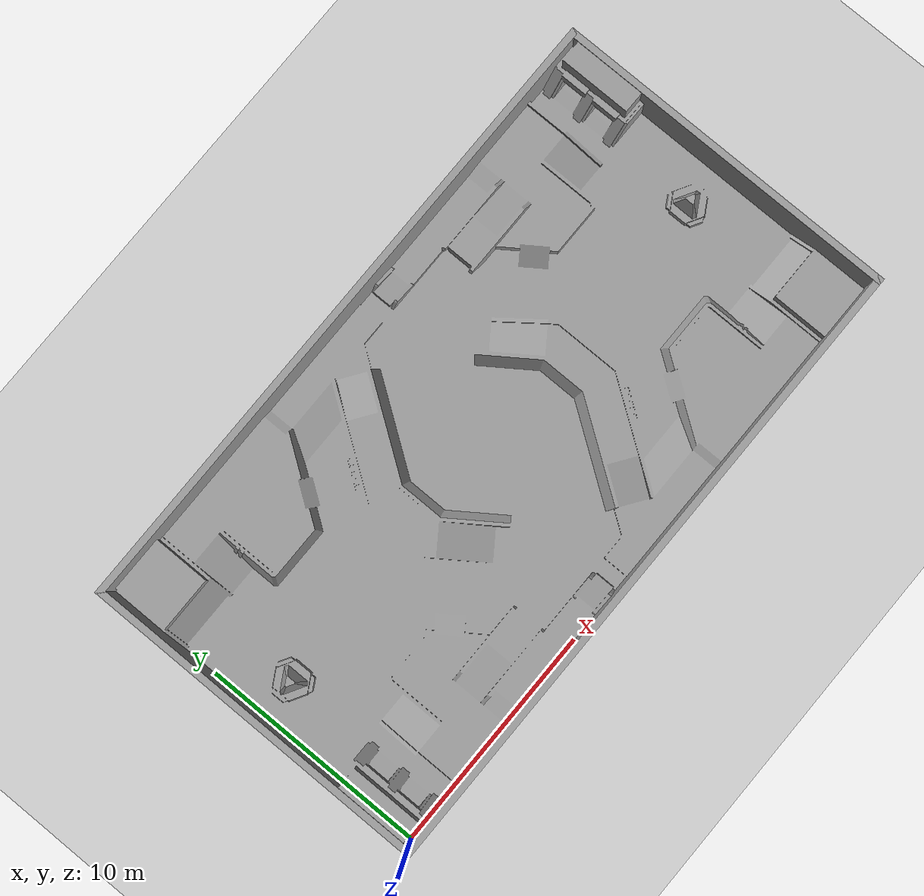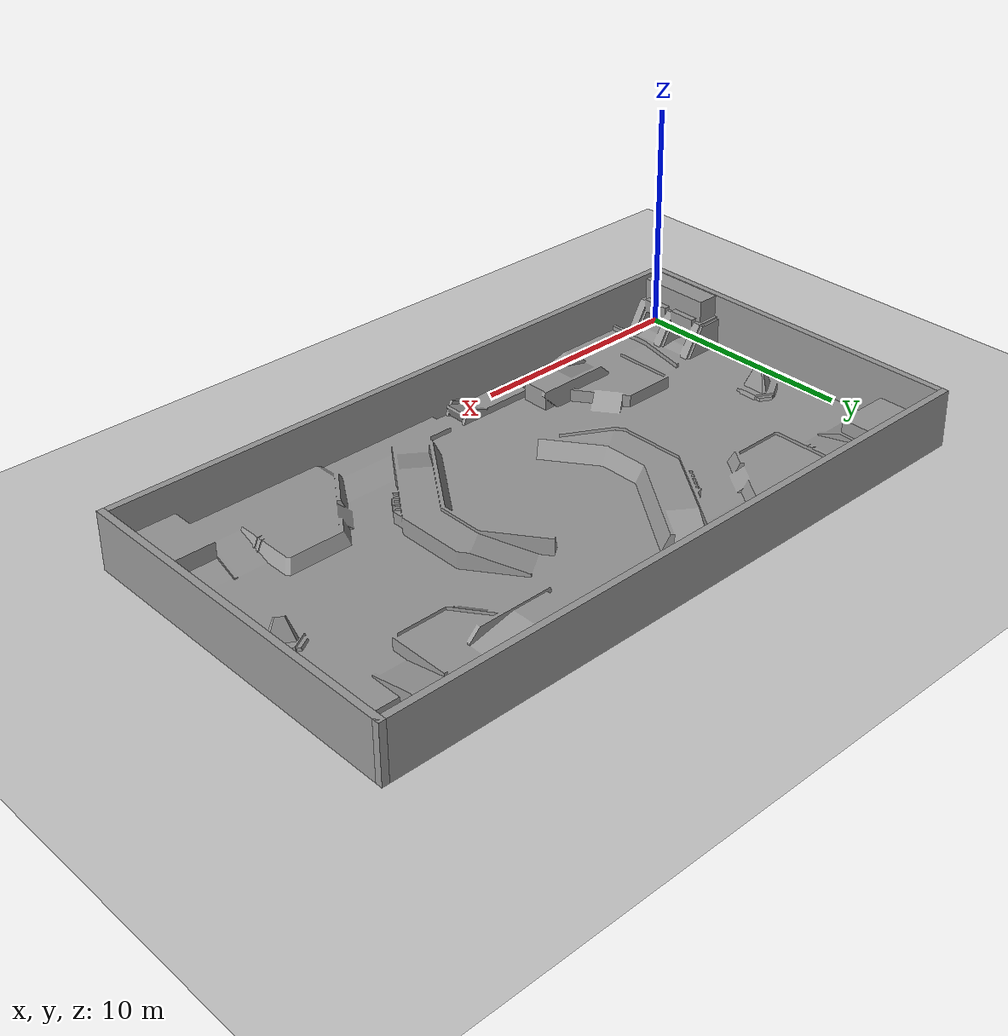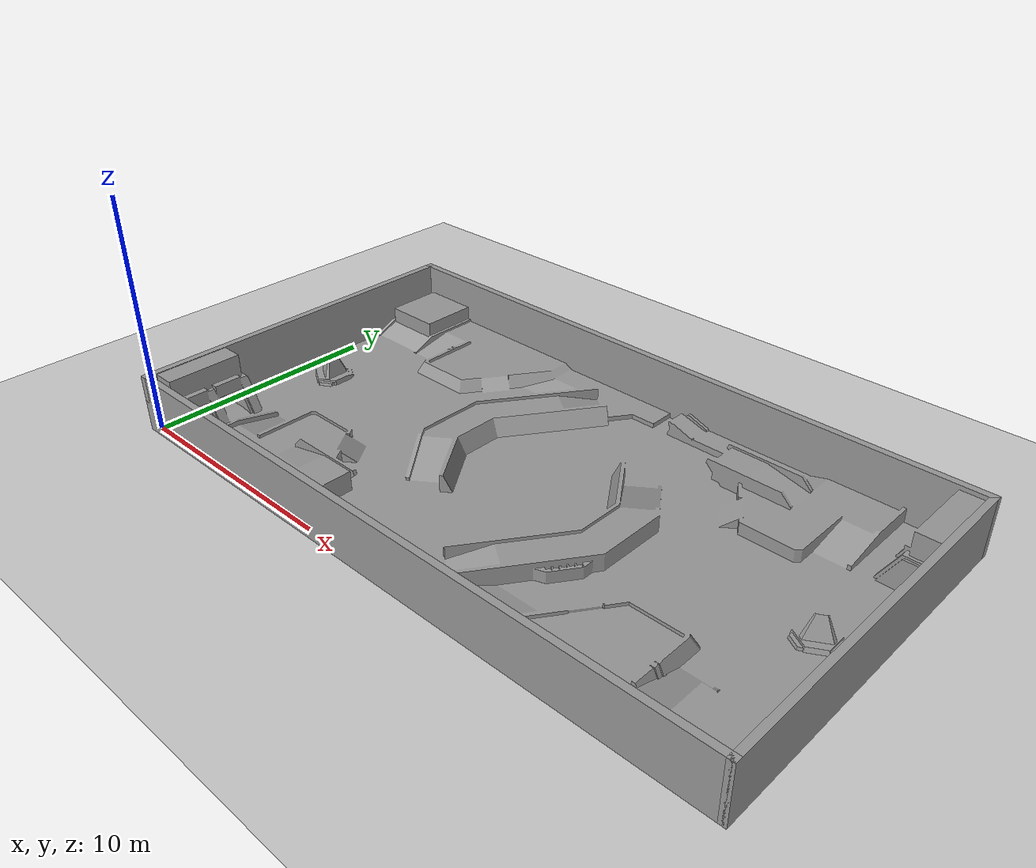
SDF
<sdf version="1.7">
 <world name="default">
  <light name="sun" type="directional">
   <pose>0 0 10 0 -0 0</pose>
   <diffuse>0.8 0.8 0.8 1</diffuse>
   <specular>0.2 0.2 0.2 1</specular>
   <attenuation>
    <range>1000</range>
    <constant>0.9</constant>
    <linear>0.01</linear>
    <quadratic>0.001</quadratic>
   </attenuation>
   <direction>-0.5 0.1 -0.9</direction>
   <spot><inner_angle>0</inner_angle><outer_angle>0</outer_angle><falloff>0</falloff></spot>
  </light>
  <model name="ground_plane">
   <static>1</static>
   <link name="link">
    <collision name="collision">
     <geometry><plane><normal>0 0 1</normal><size>100 100</size></plane></geometry>
     <surface>
      <contact><collide_bitmask>65535</collide_bitmask></contact>
      <friction><ode><mu>100</mu><mu2>50</mu2></ode></friction>
     </surface>
    </collision>
    <visual name="visual">
     <cast_shadows>0</cast_shadows>
     <geometry><plane><normal>0 0 1</normal><size>100 100</size></plane></geometry>
     <material>
      <script><uri>file://media/materials/scripts/gazebo.material</uri><name>Gazebo/Grey</name></script>
     </material>
    </visual>
   </link>
  </model>
  <gravity>0 0 -250</gravity>
  <magnetic_field>6e-06 2.3e-05 -4.2e-05</magnetic_field>
  <atmosphere type="adiabatic"/>
  <physics type="ode">
   <max_step_size>0.001</max_step_size>
   <real_time_factor>1</real_time_factor>
   <real_time_update_rate>1000</real_time_update_rate>
  </physics>
  <scene><ambient>0.4 0.4 0.4 1</ambient><background>0.7 0.7 0.7 1</background><shadows>1</shadows></scene>
  <spherical_coordinates>
   <surface_model>EARTH_WGS84</surface_model>
   <latitude_deg>0</latitude_deg>
   <longitude_deg>0</longitude_deg>
   <elevation>0</elevation>
   <heading_deg>0</heading_deg>
  </spherical_coordinates>
  <model name="Untitled">
   <link name="link_0">
    <inertial>
     <mass>1e+09</mass>
     <inertia>
      <ixx>1.66667e+07</ixx>
      <ixy>0</ixy>
      <ixz>0</ixz>
      <iyy>1.66667e+07</iyy>
      <iyz>0</iyz>
      <izz>1.66667e+07</izz>
     </inertia>
    </inertial>
    <pose>0 0 0 1.5708 -0 0</pose>
    <self_collide>1</self_collide>
    <visual name="visual">
     <geometry>
      <mesh><uri>/home/lc/2022HPX/learn_ws/src/zz/meshes/map_link.stl</uri><scale>1 1 1</scale></mesh>
     </geometry>
     <material>
      <lighting>1</lighting>
      <script><uri>file://media/materials/scripts/gazebo.material</uri><name>Gazebo/Grey</name></script>
      <shader type="pixel"><normal_map>__default__</normal_map></shader>
      <emissive>0 0 0 1</emissive>
      <ambient>0.3 0.3 0.3 1</ambient>
      <diffuse>0.7 0.7 0.7 1</diffuse>
      <specular>0.01 0.01 0.01 1</specular>
     </material>
    </visual>
    <collision name="collision">
     <geometry>
      <mesh><uri>/home/lc/2022HPX/learn_ws/src/zz/meshes/map_link.stl</uri><scale>1 1 1</scale></mesh>
     </geometry>
     <surface>
      <friction>
       <ode><mu>1</mu><mu2>1</mu2><fdir1>0 0 0</fdir1><slip1>0</slip1><slip2>0</slip2></ode>
       <torsional>
        <coefficient>1</coefficient>
        <patch_radius>0</patch_radius>
        <surface_radius>0</surface_radius>
        <use_patch_radius>1</use_patch_radius>
        <ode><slip>0</slip></ode>
       </torsional>
      </friction>
      <bounce><restitution_coefficient>0</restitution_coefficient><threshold>1e+06</threshold></bounce>
      <contact>
       <collide_without_contact>0</collide_without_contact>
       <collide_without_contact_bitmask>1</collide_without_contact_bitmask>
       <collide_bitmask>1</collide_bitmask>
       <ode>
        <soft_cfm>0</soft_cfm>
        <soft_erp>0.2</soft_erp>
        <kp>1e+13</kp>
        <kd>1</kd>
        <max_vel>0.01</max_vel>
        <min_depth>0</min_depth>
       </ode>
       <bullet>
        <split_impulse>1</split_impulse>
        <split_impulse_penetration_threshold>-0.01</split_impulse_penetration_threshold>
        <soft_cfm>0</soft_cfm>
        <soft_erp>0.2</soft_erp>
        <kp>1e+13</kp>
        <kd>1</kd>
       </bullet>
      </contact>
     </surface>
    </collision>
   </link>
   <static>1</static>
   <pose>0 15 0.1 0 -0 0</pose>
  </model>
  <model name="Untitled_0">
   <pose>14 7.5 0 0 -0 0</pose>
   <link name="Wall_0">
    <collision name="Wall_0_Collision">
     <geometry><box><size>28.6 0.3 2.5</size></box></geometry>
     <pose>0 0 1.25 0 -0 0</pose>
    </collision>
    <visual name="Wall_0_Visual">
     <pose>0 0 1.25 0 -0 0</pose>
     <geometry><box><size>28.6 0.3 2.5</size></box></geometry>
     <material>
      <script><uri>file://media/materials/scripts/gazebo.material</uri><name>Gazebo/Grey</name></script>
      <ambient>1 1 1 1</ambient>
     </material>
     <meta><layer>0</layer></meta>
    </visual>
    <pose>-0 7.65 0 0 -0 3.14159</pose>
   </link>
   <link name="Wall_1">
    <collision name="Wall_1_Collision">
     <geometry><box><size>15.6 0.3 2.5</size></box></geometry>
     <pose>0 0 1.25 0 -0 0</pose>
    </collision>
    <visual name="Wall_1_Visual">
     <pose>0 0 1.25 0 -0 0</pose>
     <geometry><box><size>15.6 0.3 2.5</size></box></geometry>
     <material>
      <script><uri>file://media/materials/scripts/gazebo.material</uri><name>Gazebo/Grey</name></script>
      <ambient>1 1 1 1</ambient>
     </material>
     <meta><layer>0</layer></meta>
    </visual>
    <pose>-14.15 0 0 0 -0 -1.5708</pose>
   </link>
   <link name="Wall_2">
    <collision name="Wall_2_Collision">
     <geometry><box><size>28.6 0.3 2.5</size></box></geometry>
     <pose>0 0 1.25 0 -0 0</pose>
    </collision>
    <visual name="Wall_2_Visual">
     <pose>0 0 1.25 0 -0 0</pose>
     <geometry><box><size>28.6 0.3 2.5</size></box></geometry>
     <material>
      <script><uri>file://media/materials/scripts/gazebo.material</uri><name>Gazebo/Grey</name></script>
      <ambient>1 1 1 1</ambient>
     </material>
     <meta><layer>0</layer></meta>
    </visual>
    <pose>-0 -7.65 0 0 -0 0</pose>
   </link>
   <link name="Wall_3">
    <collision name="Wall_3_Collision">
     <geometry><box><size>15.6 0.3 2.5</size></box></geometry>
     <pose>0 0 1.25 0 -0 0</pose>
    </collision>
    <visual name="Wall_3_Visual">
     <pose>0 0 1.25 0 -0 0</pose>
     <geometry><box><size>15.6 0.3 2.5</size></box></geometry>
     <material>
      <script><uri>file://media/materials/scripts/gazebo.material</uri><name>Gazebo/Grey</name></script>
      <ambient>1 1 1 1</ambient>
     </material>
     <meta><layer>0</layer></meta>
    </visual>
    <pose>14.15 0 0 0 -0 1.5708</pose>
   </link>
   <static>1</static>
  </model>
 </world>
</sdf>
